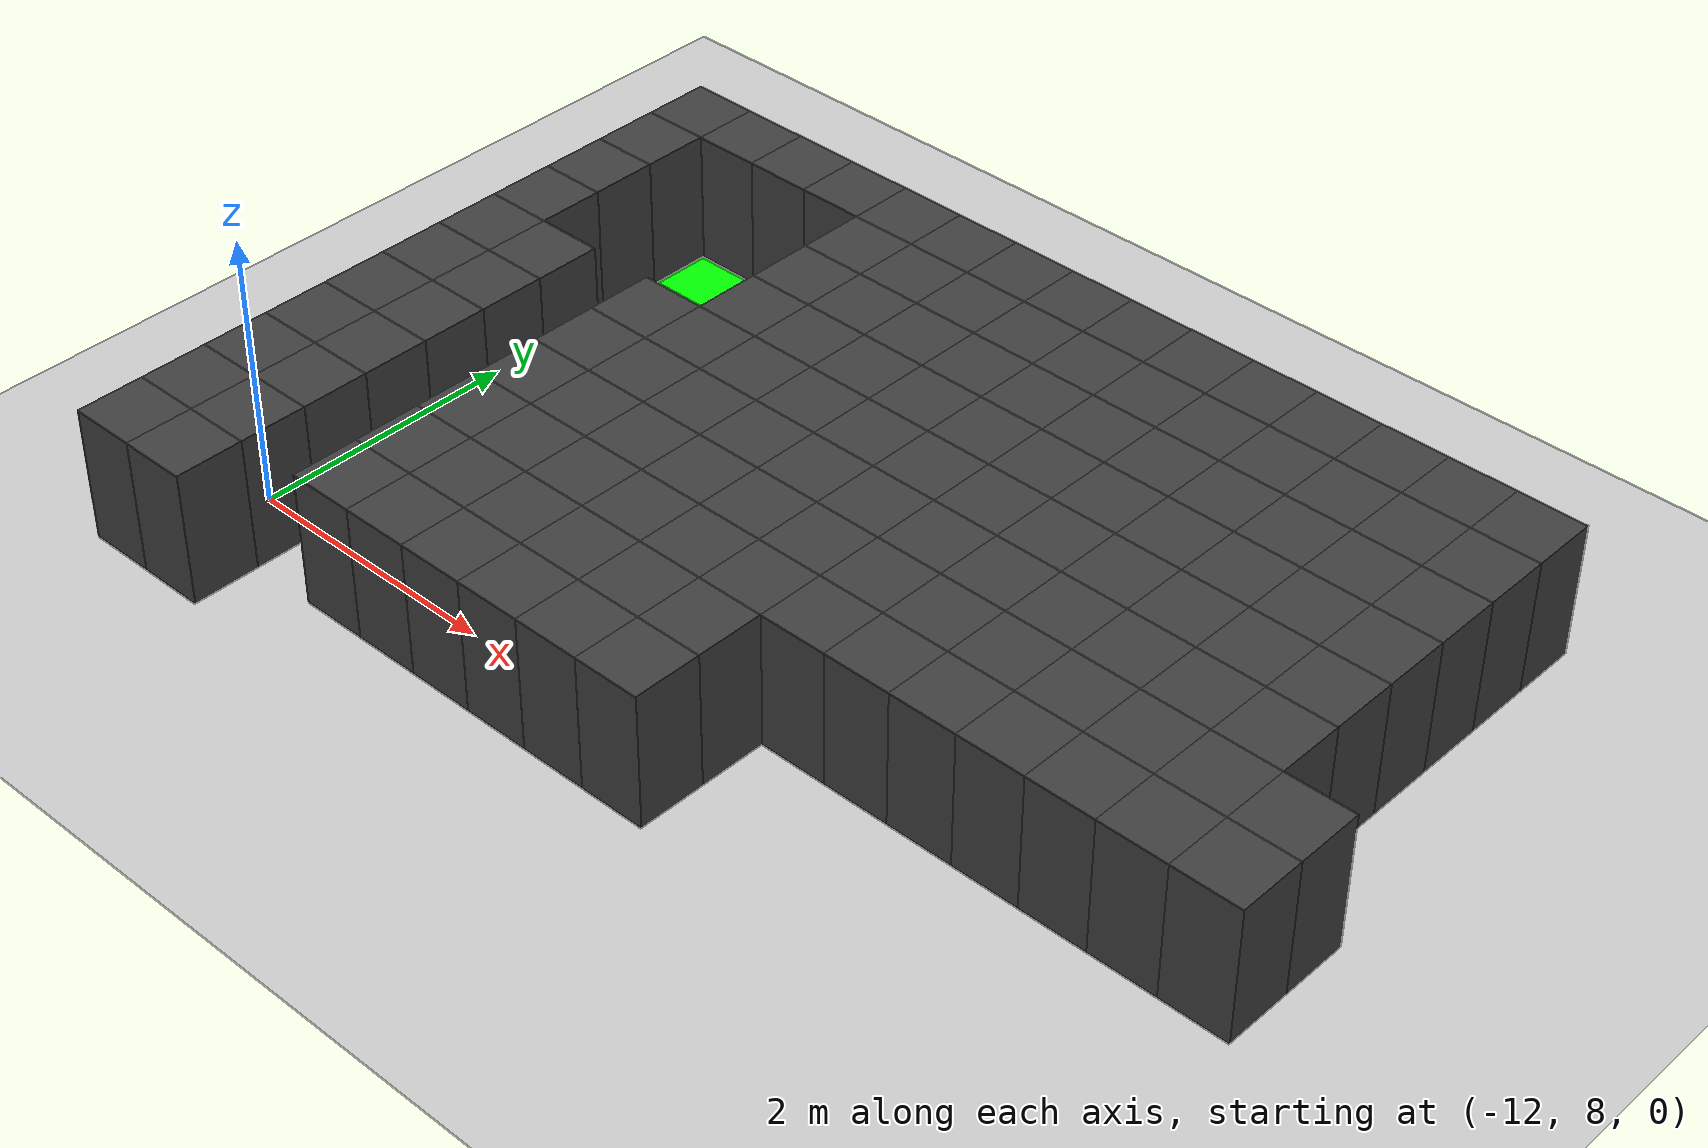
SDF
<sdf version="1.7">
 <world name="map_14980">
  <model name="ground_plane">
   <static>true</static>
   <link name="link">
    <collision name="collision">
     <geometry><plane><normal>0 0 1</normal><size>200 200</size></plane></geometry>
    </collision>
    <visual name="visual">
     <geometry><plane><normal>0 0 1</normal><size>200 200</size></plane></geometry>
     <material><ambient>0.8 0.8 0.8 1</ambient><diffuse>0.8 0.8 0.8 1</diffuse></material>
    </visual>
   </link>
  </model>
  <model name="maze_environment">
   <static>true</static>
   <link name="wall_0">
    <pose>-12.250 12.250 0.500 0 0 0</pose>
    <collision name="col"><geometry><box><size>0.5 0.5 1.0</size></box></geometry></collision>
    <visual name="vis">
     <geometry><box><size>0.5 0.5 1.0</size></box></geometry>
     <material><ambient>0.15 0.15 0.15 1</ambient><diffuse>0.25 0.25 0.25 1</diffuse></material>
    </visual>
   </link>
   <link name="wall_1">
    <pose>-11.750 12.250 0.500 0 0 0</pose>
    <collision name="col"><geometry><box><size>0.5 0.5 1.0</size></box></geometry></collision>
    <visual name="vis">
     <geometry><box><size>0.5 0.5 1.0</size></box></geometry>
     <material><ambient>0.15 0.15 0.15 1</ambient><diffuse>0.25 0.25 0.25 1</diffuse></material>
    </visual>
   </link>
   <link name="wall_2">
    <pose>-11.250 12.250 0.500 0 0 0</pose>
    <collision name="col"><geometry><box><size>0.5 0.5 1.0</size></box></geometry></collision>
    <visual name="vis">
     <geometry><box><size>0.5 0.5 1.0</size></box></geometry>
     <material><ambient>0.15 0.15 0.15 1</ambient><diffuse>0.25 0.25 0.25 1</diffuse></material>
    </visual>
   </link>
   <link name="wall_3">
    <pose>-10.750 12.250 0.500 0 0 0</pose>
    <collision name="col"><geometry><box><size>0.5 0.5 1.0</size></box></geometry></collision>
    <visual name="vis">
     <geometry><box><size>0.5 0.5 1.0</size></box></geometry>
     <material><ambient>0.15 0.15 0.15 1</ambient><diffuse>0.25 0.25 0.25 1</diffuse></material>
    </visual>
   </link>
   <link name="wall_4">
    <pose>-10.250 12.250 0.500 0 0 0</pose>
    <collision name="col"><geometry><box><size>0.5 0.5 1.0</size></box></geometry></collision>
    <visual name="vis">
     <geometry><box><size>0.5 0.5 1.0</size></box></geometry>
     <material><ambient>0.15 0.15 0.15 1</ambient><diffuse>0.25 0.25 0.25 1</diffuse></material>
    </visual>
   </link>
   <link name="wall_5">
    <pose>-9.750 12.250 0.500 0 0 0</pose>
    <collision name="col"><geometry><box><size>0.5 0.5 1.0</size></box></geometry></collision>
    <visual name="vis">
     <geometry><box><size>0.5 0.5 1.0</size></box></geometry>
     <material><ambient>0.15 0.15 0.15 1</ambient><diffuse>0.25 0.25 0.25 1</diffuse></material>
    </visual>
   </link>
   <link name="wall_6">
    <pose>-9.250 12.250 0.500 0 0 0</pose>
    <collision name="col"><geometry><box><size>0.5 0.5 1.0</size></box></geometry></collision>
    <visual name="vis">
     <geometry><box><size>0.5 0.5 1.0</size></box></geometry>
     <material><ambient>0.15 0.15 0.15 1</ambient><diffuse>0.25 0.25 0.25 1</diffuse></material>
    </visual>
   </link>
   <link name="wall_7">
    <pose>-8.750 12.250 0.500 0 0 0</pose>
    <collision name="col"><geometry><box><size>0.5 0.5 1.0</size></box></geometry></collision>
    <visual name="vis">
     <geometry><box><size>0.5 0.5 1.0</size></box></geometry>
     <material><ambient>0.15 0.15 0.15 1</ambient><diffuse>0.25 0.25 0.25 1</diffuse></material>
    </visual>
   </link>
   <link name="wall_8">
    <pose>-8.250 12.250 0.500 0 0 0</pose>
    <collision name="col"><geometry><box><size>0.5 0.5 1.0</size></box></geometry></collision>
    <visual name="vis">
     <geometry><box><size>0.5 0.5 1.0</size></box></geometry>
     <material><ambient>0.15 0.15 0.15 1</ambient><diffuse>0.25 0.25 0.25 1</diffuse></material>
    </visual>
   </link>
   <link name="wall_9">
    <pose>-7.750 12.250 0.500 0 0 0</pose>
    <collision name="col"><geometry><box><size>0.5 0.5 1.0</size></box></geometry></collision>
    <visual name="vis">
     <geometry><box><size>0.5 0.5 1.0</size></box></geometry>
     <material><ambient>0.15 0.15 0.15 1</ambient><diffuse>0.25 0.25 0.25 1</diffuse></material>
    </visual>
   </link>
   <link name="wall_10">
    <pose>-7.250 12.250 0.500 0 0 0</pose>
    <collision name="col"><geometry><box><size>0.5 0.5 1.0</size></box></geometry></collision>
    <visual name="vis">
     <geometry><box><size>0.5 0.5 1.0</size></box></geometry>
     <material><ambient>0.15 0.15 0.15 1</ambient><diffuse>0.25 0.25 0.25 1</diffuse></material>
    </visual>
   </link>
   <link name="wall_11">
    <pose>-6.750 12.250 0.500 0 0 0</pose>
    <collision name="col"><geometry><box><size>0.5 0.5 1.0</size></box></geometry></collision>
    <visual name="vis">
     <geometry><box><size>0.5 0.5 1.0</size></box></geometry>
     <material><ambient>0.15 0.15 0.15 1</ambient><diffuse>0.25 0.25 0.25 1</diffuse></material>
    </visual>
   </link>
   <link name="wall_12">
    <pose>-6.250 12.250 0.500 0 0 0</pose>
    <collision name="col"><geometry><box><size>0.5 0.5 1.0</size></box></geometry></collision>
    <visual name="vis">
     <geometry><box><size>0.5 0.5 1.0</size></box></geometry>
     <material><ambient>0.15 0.15 0.15 1</ambient><diffuse>0.25 0.25 0.25 1</diffuse></material>
    </visual>
   </link>
   <link name="wall_13">
    <pose>-5.750 12.250 0.500 0 0 0</pose>
    <collision name="col"><geometry><box><size>0.5 0.5 1.0</size></box></geometry></collision>
    <visual name="vis">
     <geometry><box><size>0.5 0.5 1.0</size></box></geometry>
     <material><ambient>0.15 0.15 0.15 1</ambient><diffuse>0.25 0.25 0.25 1</diffuse></material>
    </visual>
   </link>
   <link name="wall_14">
    <pose>-5.250 12.250 0.500 0 0 0</pose>
    <collision name="col"><geometry><box><size>0.5 0.5 1.0</size></box></geometry></collision>
    <visual name="vis">
     <geometry><box><size>0.5 0.5 1.0</size></box></geometry>
     <material><ambient>0.15 0.15 0.15 1</ambient><diffuse>0.25 0.25 0.25 1</diffuse></material>
    </visual>
   </link>
   <link name="wall_50">
    <pose>-12.250 11.750 0.500 0 0 0</pose>
    <collision name="col"><geometry><box><size>0.5 0.5 1.0</size></box></geometry></collision>
    <visual name="vis">
     <geometry><box><size>0.5 0.5 1.0</size></box></geometry>
     <material><ambient>0.15 0.15 0.15 1</ambient><diffuse>0.25 0.25 0.25 1</diffuse></material>
    </visual>
   </link>
   <link name="wall_51">
    <pose>-10.250 11.750 0.500 0 0 0</pose>
    <collision name="col"><geometry><box><size>0.5 0.5 1.0</size></box></geometry></collision>
    <visual name="vis">
     <geometry><box><size>0.5 0.5 1.0</size></box></geometry>
     <material><ambient>0.15 0.15 0.15 1</ambient><diffuse>0.25 0.25 0.25 1</diffuse></material>
    </visual>
   </link>
   <link name="wall_52">
    <pose>-9.750 11.750 0.500 0 0 0</pose>
    <collision name="col"><geometry><box><size>0.5 0.5 1.0</size></box></geometry></collision>
    <visual name="vis">
     <geometry><box><size>0.5 0.5 1.0</size></box></geometry>
     <material><ambient>0.15 0.15 0.15 1</ambient><diffuse>0.25 0.25 0.25 1</diffuse></material>
    </visual>
   </link>
   <link name="wall_53">
    <pose>-9.250 11.750 0.500 0 0 0</pose>
    <collision name="col"><geometry><box><size>0.5 0.5 1.0</size></box></geometry></collision>
    <visual name="vis">
     <geometry><box><size>0.5 0.5 1.0</size></box></geometry>
     <material><ambient>0.15 0.15 0.15 1</ambient><diffuse>0.25 0.25 0.25 1</diffuse></material>
    </visual>
   </link>
   <link name="wall_54">
    <pose>-8.750 11.750 0.500 0 0 0</pose>
    <collision name="col"><geometry><box><size>0.5 0.5 1.0</size></box></geometry></collision>
    <visual name="vis">
     <geometry><box><size>0.5 0.5 1.0</size></box></geometry>
     <material><ambient>0.15 0.15 0.15 1</ambient><diffuse>0.25 0.25 0.25 1</diffuse></material>
    </visual>
   </link>
   <link name="wall_55">
    <pose>-8.250 11.750 0.500 0 0 0</pose>
    <collision name="col"><geometry><box><size>0.5 0.5 1.0</size></box></geometry></collision>
    <visual name="vis">
     <geometry><box><size>0.5 0.5 1.0</size></box></geometry>
     <material><ambient>0.15 0.15 0.15 1</ambient><diffuse>0.25 0.25 0.25 1</diffuse></material>
    </visual>
   </link>
   <link name="wall_56">
    <pose>-7.750 11.750 0.500 0 0 0</pose>
    <collision name="col"><geometry><box><size>0.5 0.5 1.0</size></box></geometry></collision>
    <visual name="vis">
     <geometry><box><size>0.5 0.5 1.0</size></box></geometry>
     <material><ambient>0.15 0.15 0.15 1</ambient><diffuse>0.25 0.25 0.25 1</diffuse></material>
    </visual>
   </link>
   <link name="wall_57">
    <pose>-7.250 11.750 0.500 0 0 0</pose>
    <collision name="col"><geometry><box><size>0.5 0.5 1.0</size></box></geometry></collision>
    <visual name="vis">
     <geometry><box><size>0.5 0.5 1.0</size></box></geometry>
     <material><ambient>0.15 0.15 0.15 1</ambient><diffuse>0.25 0.25 0.25 1</diffuse></material>
    </visual>
   </link>
   <link name="wall_58">
    <pose>-6.750 11.750 0.500 0 0 0</pose>
    <collision name="col"><geometry><box><size>0.5 0.5 1.0</size></box></geometry></collision>
    <visual name="vis">
     <geometry><box><size>0.5 0.5 1.0</size></box></geometry>
     <material><ambient>0.15 0.15 0.15 1</ambient><diffuse>0.25 0.25 0.25 1</diffuse></material>
    </visual>
   </link>
   <link name="wall_59">
    <pose>-6.250 11.750 0.500 0 0 0</pose>
    <collision name="col"><geometry><box><size>0.5 0.5 1.0</size></box></geometry></collision>
    <visual name="vis">
     <geometry><box><size>0.5 0.5 1.0</size></box></geometry>
     <material><ambient>0.15 0.15 0.15 1</ambient><diffuse>0.25 0.25 0.25 1</diffuse></material>
    </visual>
   </link>
   <link name="wall_60">
    <pose>-5.750 11.750 0.500 0 0 0</pose>
    <collision name="col"><geometry><box><size>0.5 0.5 1.0</size></box></geometry></collision>
    <visual name="vis">
     <geometry><box><size>0.5 0.5 1.0</size></box></geometry>
     <material><ambient>0.15 0.15 0.15 1</ambient><diffuse>0.25 0.25 0.25 1</diffuse></material>
    </visual>
   </link>
   <link name="wall_61">
    <pose>-5.250 11.750 0.500 0 0 0</pose>
    <collision name="col"><geometry><box><size>0.5 0.5 1.0</size></box></geometry></collision>
    <visual name="vis">
     <geometry><box><size>0.5 0.5 1.0</size></box></geometry>
     <material><ambient>0.15 0.15 0.15 1</ambient><diffuse>0.25 0.25 0.25 1</diffuse></material>
    </visual>
   </link>
   <link name="wall_97">
    <pose>-12.250 11.250 0.500 0 0 0</pose>
    <collision name="col"><geometry><box><size>0.5 0.5 1.0</size></box></geometry></collision>
    <visual name="vis">
     <geometry><box><size>0.5 0.5 1.0</size></box></geometry>
     <material><ambient>0.15 0.15 0.15 1</ambient><diffuse>0.25 0.25 0.25 1</diffuse></material>
    </visual>
   </link>
   <link name="wall_98">
    <pose>-10.250 11.250 0.500 0 0 0</pose>
    <collision name="col"><geometry><box><size>0.5 0.5 1.0</size></box></geometry></collision>
    <visual name="vis">
     <geometry><box><size>0.5 0.5 1.0</size></box></geometry>
     <material><ambient>0.15 0.15 0.15 1</ambient><diffuse>0.25 0.25 0.25 1</diffuse></material>
    </visual>
   </link>
   <link name="wall_99">
    <pose>-9.750 11.250 0.500 0 0 0</pose>
    <collision name="col"><geometry><box><size>0.5 0.5 1.0</size></box></geometry></collision>
    <visual name="vis">
     <geometry><box><size>0.5 0.5 1.0</size></box></geometry>
     <material><ambient>0.15 0.15 0.15 1</ambient><diffuse>0.25 0.25 0.25 1</diffuse></material>
    </visual>
   </link>
   <link name="wall_100">
    <pose>-9.250 11.250 0.500 0 0 0</pose>
    <collision name="col"><geometry><box><size>0.5 0.5 1.0</size></box></geometry></collision>
    <visual name="vis">
     <geometry><box><size>0.5 0.5 1.0</size></box></geometry>
     <material><ambient>0.15 0.15 0.15 1</ambient><diffuse>0.25 0.25 0.25 1</diffuse></material>
    </visual>
   </link>
   <link name="wall_101">
    <pose>-8.750 11.250 0.500 0 0 0</pose>
    <collision name="col"><geometry><box><size>0.5 0.5 1.0</size></box></geometry></collision>
    <visual name="vis">
     <geometry><box><size>0.5 0.5 1.0</size></box></geometry>
     <material><ambient>0.15 0.15 0.15 1</ambient><diffuse>0.25 0.25 0.25 1</diffuse></material>
    </visual>
   </link>
   <link name="wall_102">
    <pose>-8.250 11.250 0.500 0 0 0</pose>
    <collision name="col"><geometry><box><size>0.5 0.5 1.0</size></box></geometry></collision>
    <visual name="vis">
     <geometry><box><size>0.5 0.5 1.0</size></box></geometry>
     <material><ambient>0.15 0.15 0.15 1</ambient><diffuse>0.25 0.25 0.25 1</diffuse></material>
    </visual>
   </link>
   <link name="wall_103">
    <pose>-7.750 11.250 0.500 0 0 0</pose>
    <collision name="col"><geometry><box><size>0.5 0.5 1.0</size></box></geometry></collision>
    <visual name="vis">
     <geometry><box><size>0.5 0.5 1.0</size></box></geometry>
     <material><ambient>0.15 0.15 0.15 1</ambient><diffuse>0.25 0.25 0.25 1</diffuse></material>
    </visual>
   </link>
   <link name="wall_104">
    <pose>-7.250 11.250 0.500 0 0 0</pose>
    <collision name="col"><geometry><box><size>0.5 0.5 1.0</size></box></geometry></collision>
    <visual name="vis">
     <geometry><box><size>0.5 0.5 1.0</size></box></geometry>
     <material><ambient>0.15 0.15 0.15 1</ambient><diffuse>0.25 0.25 0.25 1</diffuse></material>
    </visual>
   </link>
   <link name="wall_105">
    <pose>-6.750 11.250 0.500 0 0 0</pose>
    <collision name="col"><geometry><box><size>0.5 0.5 1.0</size></box></geometry></collision>
    <visual name="vis">
     <geometry><box><size>0.5 0.5 1.0</size></box></geometry>
     <material><ambient>0.15 0.15 0.15 1</ambient><diffuse>0.25 0.25 0.25 1</diffuse></material>
    </visual>
   </link>
   <link name="wall_106">
    <pose>-6.250 11.250 0.500 0 0 0</pose>
    <collision name="col"><geometry><box><size>0.5 0.5 1.0</size></box></geometry></collision>
    <visual name="vis">
     <geometry><box><size>0.5 0.5 1.0</size></box></geometry>
     <material><ambient>0.15 0.15 0.15 1</ambient><diffuse>0.25 0.25 0.25 1</diffuse></material>
    </visual>
   </link>
   <link name="wall_107">
    <pose>-5.750 11.250 0.500 0 0 0</pose>
    <collision name="col"><geometry><box><size>0.5 0.5 1.0</size></box></geometry></collision>
    <visual name="vis">
     <geometry><box><size>0.5 0.5 1.0</size></box></geometry>
     <material><ambient>0.15 0.15 0.15 1</ambient><diffuse>0.25 0.25 0.25 1</diffuse></material>
    </visual>
   </link>
   <link name="wall_108">
    <pose>-5.250 11.250 0.500 0 0 0</pose>
    <collision name="col"><geometry><box><size>0.5 0.5 1.0</size></box></geometry></collision>
    <visual name="vis">
     <geometry><box><size>0.5 0.5 1.0</size></box></geometry>
     <material><ambient>0.15 0.15 0.15 1</ambient><diffuse>0.25 0.25 0.25 1</diffuse></material>
    </visual>
   </link>
   <link name="wall_144">
    <pose>-12.250 10.750 0.500 0 0 0</pose>
    <collision name="col"><geometry><box><size>0.5 0.5 1.0</size></box></geometry></collision>
    <visual name="vis">
     <geometry><box><size>0.5 0.5 1.0</size></box></geometry>
     <material><ambient>0.15 0.15 0.15 1</ambient><diffuse>0.25 0.25 0.25 1</diffuse></material>
    </visual>
   </link>
   <link name="wall_145">
    <pose>-10.250 10.750 0.500 0 0 0</pose>
    <collision name="col"><geometry><box><size>0.5 0.5 1.0</size></box></geometry></collision>
    <visual name="vis">
     <geometry><box><size>0.5 0.5 1.0</size></box></geometry>
     <material><ambient>0.15 0.15 0.15 1</ambient><diffuse>0.25 0.25 0.25 1</diffuse></material>
    </visual>
   </link>
   <link name="wall_146">
    <pose>-9.750 10.750 0.500 0 0 0</pose>
    <collision name="col"><geometry><box><size>0.5 0.5 1.0</size></box></geometry></collision>
    <visual name="vis">
     <geometry><box><size>0.5 0.5 1.0</size></box></geometry>
     <material><ambient>0.15 0.15 0.15 1</ambient><diffuse>0.25 0.25 0.25 1</diffuse></material>
    </visual>
   </link>
   <link name="wall_147">
    <pose>-9.250 10.750 0.500 0 0 0</pose>
    <collision name="col"><geometry><box><size>0.5 0.5 1.0</size></box></geometry></collision>
    <visual name="vis">
     <geometry><box><size>0.5 0.5 1.0</size></box></geometry>
     <material><ambient>0.15 0.15 0.15 1</ambient><diffuse>0.25 0.25 0.25 1</diffuse></material>
    </visual>
   </link>
   <link name="wall_148">
    <pose>-8.750 10.750 0.500 0 0 0</pose>
    <collision name="col"><geometry><box><size>0.5 0.5 1.0</size></box></geometry></collision>
    <visual name="vis">
     <geometry><box><size>0.5 0.5 1.0</size></box></geometry>
     <material><ambient>0.15 0.15 0.15 1</ambient><diffuse>0.25 0.25 0.25 1</diffuse></material>
    </visual>
   </link>
   <link name="wall_149">
    <pose>-8.250 10.750 0.500 0 0 0</pose>
    <collision name="col"><geometry><box><size>0.5 0.5 1.0</size></box></geometry></collision>
    <visual name="vis">
     <geometry><box><size>0.5 0.5 1.0</size></box></geometry>
     <material><ambient>0.15 0.15 0.15 1</ambient><diffuse>0.25 0.25 0.25 1</diffuse></material>
    </visual>
   </link>
   <link name="wall_150">
    <pose>-7.750 10.750 0.500 0 0 0</pose>
    <collision name="col"><geometry><box><size>0.5 0.5 1.0</size></box></geometry></collision>
    <visual name="vis">
     <geometry><box><size>0.5 0.5 1.0</size></box></geometry>
     <material><ambient>0.15 0.15 0.15 1</ambient><diffuse>0.25 0.25 0.25 1</diffuse></material>
    </visual>
   </link>
   <link name="wall_151">
    <pose>-7.250 10.750 0.500 0 0 0</pose>
    <collision name="col"><geometry><box><size>0.5 0.5 1.0</size></box></geometry></collision>
    <visual name="vis">
     <geometry><box><size>0.5 0.5 1.0</size></box></geometry>
     <material><ambient>0.15 0.15 0.15 1</ambient><diffuse>0.25 0.25 0.25 1</diffuse></material>
    </visual>
   </link>
   <link name="wall_152">
    <pose>-6.750 10.750 0.500 0 0 0</pose>
    <collision name="col"><geometry><box><size>0.5 0.5 1.0</size></box></geometry></collision>
    <visual name="vis">
     <geometry><box><size>0.5 0.5 1.0</size></box></geometry>
     <material><ambient>0.15 0.15 0.15 1</ambient><diffuse>0.25 0.25 0.25 1</diffuse></material>
    </visual>
   </link>
   <link name="wall_153">
    <pose>-6.250 10.750 0.500 0 0 0</pose>
    <collision name="col"><geometry><box><size>0.5 0.5 1.0</size></box></geometry></collision>
    <visual name="vis">
     <geometry><box><size>0.5 0.5 1.0</size></box></geometry>
     <material><ambient>0.15 0.15 0.15 1</ambient><diffuse>0.25 0.25 0.25 1</diffuse></material>
    </visual>
   </link>
   <link name="wall_154">
    <pose>-5.750 10.750 0.500 0 0 0</pose>
    <collision name="col"><geometry><box><size>0.5 0.5 1.0</size></box></geometry></collision>
    <visual name="vis">
     <geometry><box><size>0.5 0.5 1.0</size></box></geometry>
     <material><ambient>0.15 0.15 0.15 1</ambient><diffuse>0.25 0.25 0.25 1</diffuse></material>
    </visual>
   </link>
   <link name="wall_155">
    <pose>-5.250 10.750 0.500 0 0 0</pose>
    <collision name="col"><geometry><box><size>0.5 0.5 1.0</size></box></geometry></collision>
    <visual name="vis">
     <geometry><box><size>0.5 0.5 1.0</size></box></geometry>
     <material><ambient>0.15 0.15 0.15 1</ambient><diffuse>0.25 0.25 0.25 1</diffuse></material>
    </visual>
   </link>
   <link name="wall_185">
    <pose>-12.250 10.250 0.500 0 0 0</pose>
    <collision name="col"><geometry><box><size>0.5 0.5 1.0</size></box></geometry></collision>
    <visual name="vis">
     <geometry><box><size>0.5 0.5 1.0</size></box></geometry>
     <material><ambient>0.15 0.15 0.15 1</ambient><diffuse>0.25 0.25 0.25 1</diffuse></material>
    </visual>
   </link>
   <link name="wall_186">
    <pose>-11.750 10.250 0.500 0 0 0</pose>
    <collision name="col"><geometry><box><size>0.5 0.5 1.0</size></box></geometry></collision>
    <visual name="vis">
     <geometry><box><size>0.5 0.5 1.0</size></box></geometry>
     <material><ambient>0.15 0.15 0.15 1</ambient><diffuse>0.25 0.25 0.25 1</diffuse></material>
    </visual>
   </link>
   <link name="wall_187">
    <pose>-10.750 10.250 0.500 0 0 0</pose>
    <collision name="col"><geometry><box><size>0.5 0.5 1.0</size></box></geometry></collision>
    <visual name="vis">
     <geometry><box><size>0.5 0.5 1.0</size></box></geometry>
     <material><ambient>0.15 0.15 0.15 1</ambient><diffuse>0.25 0.25 0.25 1</diffuse></material>
    </visual>
   </link>
   <link name="wall_188">
    <pose>-10.250 10.250 0.500 0 0 0</pose>
    <collision name="col"><geometry><box><size>0.5 0.5 1.0</size></box></geometry></collision>
    <visual name="vis">
     <geometry><box><size>0.5 0.5 1.0</size></box></geometry>
     <material><ambient>0.15 0.15 0.15 1</ambient><diffuse>0.25 0.25 0.25 1</diffuse></material>
    </visual>
   </link>
   <link name="wall_189">
    <pose>-9.750 10.250 0.500 0 0 0</pose>
    <collision name="col"><geometry><box><size>0.5 0.5 1.0</size></box></geometry></collision>
    <visual name="vis">
     <geometry><box><size>0.5 0.5 1.0</size></box></geometry>
     <material><ambient>0.15 0.15 0.15 1</ambient><diffuse>0.25 0.25 0.25 1</diffuse></material>
    </visual>
   </link>
   <link name="wall_190">
    <pose>-9.250 10.250 0.500 0 0 0</pose>
    <collision name="col"><geometry><box><size>0.5 0.5 1.0</size></box></geometry></collision>
    <visual name="vis">
     <geometry><box><size>0.5 0.5 1.0</size></box></geometry>
     <material><ambient>0.15 0.15 0.15 1</ambient><diffuse>0.25 0.25 0.25 1</diffuse></material>
    </visual>
   </link>
   <link name="wall_191">
    <pose>-8.750 10.250 0.500 0 0 0</pose>
    <collision name="col"><geometry><box><size>0.5 0.5 1.0</size></box></geometry></collision>
    <visual name="vis">
     <geometry><box><size>0.5 0.5 1.0</size></box></geometry>
     <material><ambient>0.15 0.15 0.15 1</ambient><diffuse>0.25 0.25 0.25 1</diffuse></material>
    </visual>
   </link>
   <link name="wall_192">
    <pose>-8.250 10.250 0.500 0 0 0</pose>
    <collision name="col"><geometry><box><size>0.5 0.5 1.0</size></box></geometry></collision>
    <visual name="vis">
     <geometry><box><size>0.5 0.5 1.0</size></box></geometry>
     <material><ambient>0.15 0.15 0.15 1</ambient><diffuse>0.25 0.25 0.25 1</diffuse></material>
    </visual>
   </link>
   <link name="wall_193">
    <pose>-7.750 10.250 0.500 0 0 0</pose>
    <collision name="col"><geometry><box><size>0.5 0.5 1.0</size></box></geometry></collision>
    <visual name="vis">
     <geometry><box><size>0.5 0.5 1.0</size></box></geometry>
     <material><ambient>0.15 0.15 0.15 1</ambient><diffuse>0.25 0.25 0.25 1</diffuse></material>
    </visual>
   </link>
   <link name="wall_194">
    <pose>-7.250 10.250 0.500 0 0 0</pose>
    <collision name="col"><geometry><box><size>0.5 0.5 1.0</size></box></geometry></collision>
    <visual name="vis">
     <geometry><box><size>0.5 0.5 1.0</size></box></geometry>
     <material><ambient>0.15 0.15 0.15 1</ambient><diffuse>0.25 0.25 0.25 1</diffuse></material>
    </visual>
   </link>
   <link name="wall_195">
    <pose>-6.750 10.250 0.500 0 0 0</pose>
    <collision name="col"><geometry><box><size>0.5 0.5 1.0</size></box></geometry></collision>
    <visual name="vis">
     <geometry><box><size>0.5 0.5 1.0</size></box></geometry>
     <material><ambient>0.15 0.15 0.15 1</ambient><diffuse>0.25 0.25 0.25 1</diffuse></material>
    </visual>
   </link>
   <link name="wall_196">
    <pose>-6.250 10.250 0.500 0 0 0</pose>
    <collision name="col"><geometry><box><size>0.5 0.5 1.0</size></box></geometry></collision>
    <visual name="vis">
     <geometry><box><size>0.5 0.5 1.0</size></box></geometry>
     <material><ambient>0.15 0.15 0.15 1</ambient><diffuse>0.25 0.25 0.25 1</diffuse></material>
    </visual>
   </link>
   <link name="wall_197">
    <pose>-5.750 10.250 0.500 0 0 0</pose>
    <collision name="col"><geometry><box><size>0.5 0.5 1.0</size></box></geometry></collision>
    <visual name="vis">
     <geometry><box><size>0.5 0.5 1.0</size></box></geometry>
     <material><ambient>0.15 0.15 0.15 1</ambient><diffuse>0.25 0.25 0.25 1</diffuse></material>
    </visual>
   </link>
   <link name="wall_198">
    <pose>-5.250 10.250 0.500 0 0 0</pose>
    <collision name="col"><geometry><box><size>0.5 0.5 1.0</size></box></geometry></collision>
    <visual name="vis">
     <geometry><box><size>0.5 0.5 1.0</size></box></geometry>
     <material><ambient>0.15 0.15 0.15 1</ambient><diffuse>0.25 0.25 0.25 1</diffuse></material>
    </visual>
   </link>
   <link name="wall_228">
    <pose>-12.250 9.750 0.500 0 0 0</pose>
    <collision name="col"><geometry><box><size>0.5 0.5 1.0</size></box></geometry></collision>
    <visual name="vis">
     <geometry><box><size>0.5 0.5 1.0</size></box></geometry>
     <material><ambient>0.15 0.15 0.15 1</ambient><diffuse>0.25 0.25 0.25 1</diffuse></material>
    </visual>
   </link>
   <link name="wall_229">
    <pose>-11.750 9.750 0.500 0 0 0</pose>
    <collision name="col"><geometry><box><size>0.5 0.5 1.0</size></box></geometry></collision>
    <visual name="vis">
     <geometry><box><size>0.5 0.5 1.0</size></box></geometry>
     <material><ambient>0.15 0.15 0.15 1</ambient><diffuse>0.25 0.25 0.25 1</diffuse></material>
    </visual>
   </link>
   <link name="wall_230">
    <pose>-10.750 9.750 0.500 0 0 0</pose>
    <collision name="col"><geometry><box><size>0.5 0.5 1.0</size></box></geometry></collision>
    <visual name="vis">
     <geometry><box><size>0.5 0.5 1.0</size></box></geometry>
     <material><ambient>0.15 0.15 0.15 1</ambient><diffuse>0.25 0.25 0.25 1</diffuse></material>
    </visual>
   </link>
   <link name="wall_231">
    <pose>-10.250 9.750 0.500 0 0 0</pose>
    <collision name="col"><geometry><box><size>0.5 0.5 1.0</size></box></geometry></collision>
    <visual name="vis">
     <geometry><box><size>0.5 0.5 1.0</size></box></geometry>
     <material><ambient>0.15 0.15 0.15 1</ambient><diffuse>0.25 0.25 0.25 1</diffuse></material>
    </visual>
   </link>
   <link name="wall_232">
    <pose>-9.750 9.750 0.500 0 0 0</pose>
    <collision name="col"><geometry><box><size>0.5 0.5 1.0</size></box></geometry></collision>
    <visual name="vis">
     <geometry><box><size>0.5 0.5 1.0</size></box></geometry>
     <material><ambient>0.15 0.15 0.15 1</ambient><diffuse>0.25 0.25 0.25 1</diffuse></material>
    </visual>
   </link>
   <link name="wall_233">
    <pose>-9.250 9.750 0.500 0 0 0</pose>
    <collision name="col"><geometry><box><size>0.5 0.5 1.0</size></box></geometry></collision>
    <visual name="vis">
     <geometry><box><size>0.5 0.5 1.0</size></box></geometry>
     <material><ambient>0.15 0.15 0.15 1</ambient><diffuse>0.25 0.25 0.25 1</diffuse></material>
    </visual>
   </link>
   <link name="wall_234">
    <pose>-8.750 9.750 0.500 0 0 0</pose>
    <collision name="col"><geometry><box><size>0.5 0.5 1.0</size></box></geometry></collision>
    <visual name="vis">
     <geometry><box><size>0.5 0.5 1.0</size></box></geometry>
     <material><ambient>0.15 0.15 0.15 1</ambient><diffuse>0.25 0.25 0.25 1</diffuse></material>
    </visual>
   </link>
   <link name="wall_235">
    <pose>-8.250 9.750 0.500 0 0 0</pose>
    <collision name="col"><geometry><box><size>0.5 0.5 1.0</size></box></geometry></collision>
    <visual name="vis">
     <geometry><box><size>0.5 0.5 1.0</size></box></geometry>
     <material><ambient>0.15 0.15 0.15 1</ambient><diffuse>0.25 0.25 0.25 1</diffuse></material>
    </visual>
   </link>
   <link name="wall_236">
    <pose>-7.750 9.750 0.500 0 0 0</pose>
    <collision name="col"><geometry><box><size>0.5 0.5 1.0</size></box></geometry></collision>
    <visual name="vis">
     <geometry><box><size>0.5 0.5 1.0</size></box></geometry>
     <material><ambient>0.15 0.15 0.15 1</ambient><diffuse>0.25 0.25 0.25 1</diffuse></material>
    </visual>
   </link>
   <link name="wall_237">
    <pose>-7.250 9.750 0.500 0 0 0</pose>
    <collision name="col"><geometry><box><size>0.5 0.5 1.0</size></box></geometry></collision>
    <visual name="vis">
     <geometry><box><size>0.5 0.5 1.0</size></box></geometry>
     <material><ambient>0.15 0.15 0.15 1</ambient><diffuse>0.25 0.25 0.25 1</diffuse></material>
    </visual>
   </link>
   <link name="wall_238">
    <pose>-6.750 9.750 0.500 0 0 0</pose>
    <collision name="col"><geometry><box><size>0.5 0.5 1.0</size></box></geometry></collision>
    <visual name="vis">
     <geometry><box><size>0.5 0.5 1.0</size></box></geometry>
     <material><ambient>0.15 0.15 0.15 1</ambient><diffuse>0.25 0.25 0.25 1</diffuse></material>
    </visual>
   </link>
   <link name="wall_239">
    <pose>-6.250 9.750 0.500 0 0 0</pose>
    <collision name="col"><geometry><box><size>0.5 0.5 1.0</size></box></geometry></collision>
    <visual name="vis">
     <geometry><box><size>0.5 0.5 1.0</size></box></geometry>
     <material><ambient>0.15 0.15 0.15 1</ambient><diffuse>0.25 0.25 0.25 1</diffuse></material>
    </visual>
   </link>
   <link name="wall_240">
    <pose>-5.750 9.750 0.500 0 0 0</pose>
    <collision name="col"><geometry><box><size>0.5 0.5 1.0</size></box></geometry></collision>
    <visual name="vis">
     <geometry><box><size>0.5 0.5 1.0</size></box></geometry>
     <material><ambient>0.15 0.15 0.15 1</ambient><diffuse>0.25 0.25 0.25 1</diffuse></material>
    </visual>
   </link>
   <link name="wall_241">
    <pose>-5.250 9.750 0.500 0 0 0</pose>
    <collision name="col"><geometry><box><size>0.5 0.5 1.0</size></box></geometry></collision>
    <visual name="vis">
     <geometry><box><size>0.5 0.5 1.0</size></box></geometry>
     <material><ambient>0.15 0.15 0.15 1</ambient><diffuse>0.25 0.25 0.25 1</diffuse></material>
    </visual>
   </link>
   <link name="wall_266">
    <pose>-12.250 9.250 0.500 0 0 0</pose>
    <collision name="col"><geometry><box><size>0.5 0.5 1.0</size></box></geometry></collision>
    <visual name="vis">
     <geometry><box><size>0.5 0.5 1.0</size></box></geometry>
     <material><ambient>0.15 0.15 0.15 1</ambient><diffuse>0.25 0.25 0.25 1</diffuse></material>
    </visual>
   </link>
   <link name="wall_267">
    <pose>-11.750 9.250 0.500 0 0 0</pose>
    <collision name="col"><geometry><box><size>0.5 0.5 1.0</size></box></geometry></collision>
    <visual name="vis">
     <geometry><box><size>0.5 0.5 1.0</size></box></geometry>
     <material><ambient>0.15 0.15 0.15 1</ambient><diffuse>0.25 0.25 0.25 1</diffuse></material>
    </visual>
   </link>
   <link name="wall_268">
    <pose>-10.750 9.250 0.500 0 0 0</pose>
    <collision name="col"><geometry><box><size>0.5 0.5 1.0</size></box></geometry></collision>
    <visual name="vis">
     <geometry><box><size>0.5 0.5 1.0</size></box></geometry>
     <material><ambient>0.15 0.15 0.15 1</ambient><diffuse>0.25 0.25 0.25 1</diffuse></material>
    </visual>
   </link>
   <link name="wall_269">
    <pose>-10.250 9.250 0.500 0 0 0</pose>
    <collision name="col"><geometry><box><size>0.5 0.5 1.0</size></box></geometry></collision>
    <visual name="vis">
     <geometry><box><size>0.5 0.5 1.0</size></box></geometry>
     <material><ambient>0.15 0.15 0.15 1</ambient><diffuse>0.25 0.25 0.25 1</diffuse></material>
    </visual>
   </link>
   <link name="wall_270">
    <pose>-9.750 9.250 0.500 0 0 0</pose>
    <collision name="col"><geometry><box><size>0.5 0.5 1.0</size></box></geometry></collision>
    <visual name="vis">
     <geometry><box><size>0.5 0.5 1.0</size></box></geometry>
     <material><ambient>0.15 0.15 0.15 1</ambient><diffuse>0.25 0.25 0.25 1</diffuse></material>
    </visual>
   </link>
   <link name="wall_271">
    <pose>-9.250 9.250 0.500 0 0 0</pose>
    <collision name="col"><geometry><box><size>0.5 0.5 1.0</size></box></geometry></collision>
    <visual name="vis">
     <geometry><box><size>0.5 0.5 1.0</size></box></geometry>
     <material><ambient>0.15 0.15 0.15 1</ambient><diffuse>0.25 0.25 0.25 1</diffuse></material>
    </visual>
   </link>
   <link name="wall_272">
    <pose>-8.750 9.250 0.500 0 0 0</pose>
    <collision name="col"><geometry><box><size>0.5 0.5 1.0</size></box></geometry></collision>
    <visual name="vis">
     <geometry><box><size>0.5 0.5 1.0</size></box></geometry>
     <material><ambient>0.15 0.15 0.15 1</ambient><diffuse>0.25 0.25 0.25 1</diffuse></material>
    </visual>
   </link>
   <link name="wall_273">
    <pose>-8.250 9.250 0.500 0 0 0</pose>
    <collision name="col"><geometry><box><size>0.5 0.5 1.0</size></box></geometry></collision>
    <visual name="vis">
     <geometry><box><size>0.5 0.5 1.0</size></box></geometry>
     <material><ambient>0.15 0.15 0.15 1</ambient><diffuse>0.25 0.25 0.25 1</diffuse></material>
    </visual>
   </link>
   <link name="wall_274">
    <pose>-7.750 9.250 0.500 0 0 0</pose>
    <collision name="col"><geometry><box><size>0.5 0.5 1.0</size></box></geometry></collision>
    <visual name="vis">
     <geometry><box><size>0.5 0.5 1.0</size></box></geometry>
     <material><ambient>0.15 0.15 0.15 1</ambient><diffuse>0.25 0.25 0.25 1</diffuse></material>
    </visual>
   </link>
   <link name="wall_275">
    <pose>-7.250 9.250 0.500 0 0 0</pose>
    <collision name="col"><geometry><box><size>0.5 0.5 1.0</size></box></geometry></collision>
    <visual name="vis">
     <geometry><box><size>0.5 0.5 1.0</size></box></geometry>
     <material><ambient>0.15 0.15 0.15 1</ambient><diffuse>0.25 0.25 0.25 1</diffuse></material>
    </visual>
   </link>
   <link name="wall_276">
    <pose>-6.750 9.250 0.500 0 0 0</pose>
    <collision name="col"><geometry><box><size>0.5 0.5 1.0</size></box></geometry></collision>
    <visual name="vis">
     <geometry><box><size>0.5 0.5 1.0</size></box></geometry>
     <material><ambient>0.15 0.15 0.15 1</ambient><diffuse>0.25 0.25 0.25 1</diffuse></material>
    </visual>
   </link>
   <link name="wall_277">
    <pose>-6.250 9.250 0.500 0 0 0</pose>
    <collision name="col"><geometry><box><size>0.5 0.5 1.0</size></box></geometry></collision>
    <visual name="vis">
     <geometry><box><size>0.5 0.5 1.0</size></box></geometry>
     <material><ambient>0.15 0.15 0.15 1</ambient><diffuse>0.25 0.25 0.25 1</diffuse></material>
    </visual>
   </link>
   <link name="wall_278">
    <pose>-5.750 9.250 0.500 0 0 0</pose>
    <collision name="col"><geometry><box><size>0.5 0.5 1.0</size></box></geometry></collision>
    <visual name="vis">
     <geometry><box><size>0.5 0.5 1.0</size></box></geometry>
     <material><ambient>0.15 0.15 0.15 1</ambient><diffuse>0.25 0.25 0.25 1</diffuse></material>
    </visual>
   </link>
   <link name="wall_279">
    <pose>-5.250 9.250 0.500 0 0 0</pose>
    <collision name="col"><geometry><box><size>0.5 0.5 1.0</size></box></geometry></collision>
    <visual name="vis">
     <geometry><box><size>0.5 0.5 1.0</size></box></geometry>
     <material><ambient>0.15 0.15 0.15 1</ambient><diffuse>0.25 0.25 0.25 1</diffuse></material>
    </visual>
   </link>
   <link name="wall_280">
    <pose>-4.750 9.250 0.500 0 0 0</pose>
    <collision name="col"><geometry><box><size>0.5 0.5 1.0</size></box></geometry></collision>
    <visual name="vis">
     <geometry><box><size>0.5 0.5 1.0</size></box></geometry>
     <material><ambient>0.15 0.15 0.15 1</ambient><diffuse>0.25 0.25 0.25 1</diffuse></material>
    </visual>
   </link>
   <link name="wall_304">
    <pose>-12.250 8.750 0.500 0 0 0</pose>
    <collision name="col"><geometry><box><size>0.5 0.5 1.0</size></box></geometry></collision>
    <visual name="vis">
     <geometry><box><size>0.5 0.5 1.0</size></box></geometry>
     <material><ambient>0.15 0.15 0.15 1</ambient><diffuse>0.25 0.25 0.25 1</diffuse></material>
    </visual>
   </link>
   <link name="wall_305">
    <pose>-11.750 8.750 0.500 0 0 0</pose>
    <collision name="col"><geometry><box><size>0.5 0.5 1.0</size></box></geometry></collision>
    <visual name="vis">
     <geometry><box><size>0.5 0.5 1.0</size></box></geometry>
     <material><ambient>0.15 0.15 0.15 1</ambient><diffuse>0.25 0.25 0.25 1</diffuse></material>
    </visual>
   </link>
   <link name="wall_306">
    <pose>-10.750 8.750 0.500 0 0 0</pose>
    <collision name="col"><geometry><box><size>0.5 0.5 1.0</size></box></geometry></collision>
    <visual name="vis">
     <geometry><box><size>0.5 0.5 1.0</size></box></geometry>
     <material><ambient>0.15 0.15 0.15 1</ambient><diffuse>0.25 0.25 0.25 1</diffuse></material>
    </visual>
   </link>
   <link name="wall_307">
    <pose>-10.250 8.750 0.500 0 0 0</pose>
    <collision name="col"><geometry><box><size>0.5 0.5 1.0</size></box></geometry></collision>
    <visual name="vis">
     <geometry><box><size>0.5 0.5 1.0</size></box></geometry>
     <material><ambient>0.15 0.15 0.15 1</ambient><diffuse>0.25 0.25 0.25 1</diffuse></material>
    </visual>
   </link>
   <link name="wall_308">
    <pose>-9.750 8.750 0.500 0 0 0</pose>
    <collision name="col"><geometry><box><size>0.5 0.5 1.0</size></box></geometry></collision>
    <visual name="vis">
     <geometry><box><size>0.5 0.5 1.0</size></box></geometry>
     <material><ambient>0.15 0.15 0.15 1</ambient><diffuse>0.25 0.25 0.25 1</diffuse></material>
    </visual>
   </link>
   <link name="wall_309">
    <pose>-9.250 8.750 0.500 0 0 0</pose>
    <collision name="col"><geometry><box><size>0.5 0.5 1.0</size></box></geometry></collision>
    <visual name="vis">
     <geometry><box><size>0.5 0.5 1.0</size></box></geometry>
     <material><ambient>0.15 0.15 0.15 1</ambient><diffuse>0.25 0.25 0.25 1</diffuse></material>
    </visual>
   </link>
   <link name="wall_310">
    <pose>-8.750 8.750 0.500 0 0 0</pose>
    <collision name="col"><geometry><box><size>0.5 0.5 1.0</size></box></geometry></collision>
    <visual name="vis">
     <geometry><box><size>0.5 0.5 1.0</size></box></geometry>
     <material><ambient>0.15 0.15 0.15 1</ambient><diffuse>0.25 0.25 0.25 1</diffuse></material>
    </visual>
   </link>
   <link name="wall_311">
    <pose>-8.250 8.750 0.500 0 0 0</pose>
    <collision name="col"><geometry><box><size>0.5 0.5 1.0</size></box></geometry></collision>
    <visual name="vis">
     <geometry><box><size>0.5 0.5 1.0</size></box></geometry>
     <material><ambient>0.15 0.15 0.15 1</ambient><diffuse>0.25 0.25 0.25 1</diffuse></material>
    </visual>
   </link>
   <link name="wall_312">
    <pose>-7.750 8.750 0.500 0 0 0</pose>
    <collision name="col"><geometry><box><size>0.5 0.5 1.0</size></box></geometry></collision>
    <visual name="vis">
     <geometry><box><size>0.5 0.5 1.0</size></box></geometry>
     <material><ambient>0.15 0.15 0.15 1</ambient><diffuse>0.25 0.25 0.25 1</diffuse></material>
    </visual>
   </link>
   <link name="wall_313">
    <pose>-7.250 8.750 0.500 0 0 0</pose>
    <collision name="col"><geometry><box><size>0.5 0.5 1.0</size></box></geometry></collision>
    <visual name="vis">
     <geometry><box><size>0.5 0.5 1.0</size></box></geometry>
     <material><ambient>0.15 0.15 0.15 1</ambient><diffuse>0.25 0.25 0.25 1</diffuse></material>
    </visual>
   </link>
   <link name="wall_314">
    <pose>-6.750 8.750 0.500 0 0 0</pose>
    <collision name="col"><geometry><box><size>0.5 0.5 1.0</size></box></geometry></collision>
    <visual name="vis">
     <geometry><box><size>0.5 0.5 1.0</size></box></geometry>
     <material><ambient>0.15 0.15 0.15 1</ambient><diffuse>0.25 0.25 0.25 1</diffuse></material>
    </visual>
   </link>
   <link name="wall_315">
    <pose>-6.250 8.750 0.500 0 0 0</pose>
    <collision name="col"><geometry><box><size>0.5 0.5 1.0</size></box></geometry></collision>
    <visual name="vis">
     <geometry><box><size>0.5 0.5 1.0</size></box></geometry>
     <material><ambient>0.15 0.15 0.15 1</ambient><diffuse>0.25 0.25 0.25 1</diffuse></material>
    </visual>
   </link>
   <link name="wall_316">
    <pose>-5.750 8.750 0.500 0 0 0</pose>
    <collision name="col"><geometry><box><size>0.5 0.5 1.0</size></box></geometry></collision>
    <visual name="vis">
     <geometry><box><size>0.5 0.5 1.0</size></box></geometry>
     <material><ambient>0.15 0.15 0.15 1</ambient><diffuse>0.25 0.25 0.25 1</diffuse></material>
    </visual>
   </link>
   <link name="wall_317">
    <pose>-5.250 8.750 0.500 0 0 0</pose>
    <collision name="col"><geometry><box><size>0.5 0.5 1.0</size></box></geometry></collision>
    <visual name="vis">
     <geometry><box><size>0.5 0.5 1.0</size></box></geometry>
     <material><ambient>0.15 0.15 0.15 1</ambient><diffuse>0.25 0.25 0.25 1</diffuse></material>
    </visual>
   </link>
   <link name="wall_318">
    <pose>-4.750 8.750 0.500 0 0 0</pose>
    <collision name="col"><geometry><box><size>0.5 0.5 1.0</size></box></geometry></collision>
    <visual name="vis">
     <geometry><box><size>0.5 0.5 1.0</size></box></geometry>
     <material><ambient>0.15 0.15 0.15 1</ambient><diffuse>0.25 0.25 0.25 1</diffuse></material>
    </visual>
   </link>
   <link name="wall_339">
    <pose>-12.250 8.250 0.500 0 0 0</pose>
    <collision name="col"><geometry><box><size>0.5 0.5 1.0</size></box></geometry></collision>
    <visual name="vis">
     <geometry><box><size>0.5 0.5 1.0</size></box></geometry>
     <material><ambient>0.15 0.15 0.15 1</ambient><diffuse>0.25 0.25 0.25 1</diffuse></material>
    </visual>
   </link>
   <link name="wall_340">
    <pose>-11.750 8.250 0.500 0 0 0</pose>
    <collision name="col"><geometry><box><size>0.5 0.5 1.0</size></box></geometry></collision>
    <visual name="vis">
     <geometry><box><size>0.5 0.5 1.0</size></box></geometry>
     <material><ambient>0.15 0.15 0.15 1</ambient><diffuse>0.25 0.25 0.25 1</diffuse></material>
    </visual>
   </link>
   <link name="wall_341">
    <pose>-10.750 8.250 0.500 0 0 0</pose>
    <collision name="col"><geometry><box><size>0.5 0.5 1.0</size></box></geometry></collision>
    <visual name="vis">
     <geometry><box><size>0.5 0.5 1.0</size></box></geometry>
     <material><ambient>0.15 0.15 0.15 1</ambient><diffuse>0.25 0.25 0.25 1</diffuse></material>
    </visual>
   </link>
   <link name="wall_342">
    <pose>-10.250 8.250 0.500 0 0 0</pose>
    <collision name="col"><geometry><box><size>0.5 0.5 1.0</size></box></geometry></collision>
    <visual name="vis">
     <geometry><box><size>0.5 0.5 1.0</size></box></geometry>
     <material><ambient>0.15 0.15 0.15 1</ambient><diffuse>0.25 0.25 0.25 1</diffuse></material>
    </visual>
   </link>
   <link name="wall_343">
    <pose>-9.750 8.250 0.500 0 0 0</pose>
    <collision name="col"><geometry><box><size>0.5 0.5 1.0</size></box></geometry></collision>
    <visual name="vis">
     <geometry><box><size>0.5 0.5 1.0</size></box></geometry>
     <material><ambient>0.15 0.15 0.15 1</ambient><diffuse>0.25 0.25 0.25 1</diffuse></material>
    </visual>
   </link>
   <link name="wall_344">
    <pose>-9.250 8.250 0.500 0 0 0</pose>
    <collision name="col"><geometry><box><size>0.5 0.5 1.0</size></box></geometry></collision>
    <visual name="vis">
     <geometry><box><size>0.5 0.5 1.0</size></box></geometry>
     <material><ambient>0.15 0.15 0.15 1</ambient><diffuse>0.25 0.25 0.25 1</diffuse></material>
    </visual>
   </link>
   <link name="wall_345">
    <pose>-8.750 8.250 0.500 0 0 0</pose>
    <collision name="col"><geometry><box><size>0.5 0.5 1.0</size></box></geometry></collision>
    <visual name="vis">
     <geometry><box><size>0.5 0.5 1.0</size></box></geometry>
     <material><ambient>0.15 0.15 0.15 1</ambient><diffuse>0.25 0.25 0.25 1</diffuse></material>
    </visual>
   </link>
   <link name="wall_346">
    <pose>-8.250 8.250 0.500 0 0 0</pose>
    <collision name="col"><geometry><box><size>0.5 0.5 1.0</size></box></geometry></collision>
    <visual name="vis">
     <geometry><box><size>0.5 0.5 1.0</size></box></geometry>
     <material><ambient>0.15 0.15 0.15 1</ambient><diffuse>0.25 0.25 0.25 1</diffuse></material>
    </visual>
   </link>
   <link name="wall_368">
    <pose>-12.250 7.750 0.500 0 0 0</pose>
    <collision name="col"><geometry><box><size>0.5 0.5 1.0</size></box></geometry></collision>
    <visual name="vis">
     <geometry><box><size>0.5 0.5 1.0</size></box></geometry>
     <material><ambient>0.15 0.15 0.15 1</ambient><diffuse>0.25 0.25 0.25 1</diffuse></material>
    </visual>
   </link>
   <link name="wall_369">
    <pose>-11.750 7.750 0.500 0 0 0</pose>
    <collision name="col"><geometry><box><size>0.5 0.5 1.0</size></box></geometry></collision>
    <visual name="vis">
     <geometry><box><size>0.5 0.5 1.0</size></box></geometry>
     <material><ambient>0.15 0.15 0.15 1</ambient><diffuse>0.25 0.25 0.25 1</diffuse></material>
    </visual>
   </link>
   <link name="wall_370">
    <pose>-10.750 7.750 0.500 0 0 0</pose>
    <collision name="col"><geometry><box><size>0.5 0.5 1.0</size></box></geometry></collision>
    <visual name="vis">
     <geometry><box><size>0.5 0.5 1.0</size></box></geometry>
     <material><ambient>0.15 0.15 0.15 1</ambient><diffuse>0.25 0.25 0.25 1</diffuse></material>
    </visual>
   </link>
   <link name="wall_371">
    <pose>-10.250 7.750 0.500 0 0 0</pose>
    <collision name="col"><geometry><box><size>0.5 0.5 1.0</size></box></geometry></collision>
    <visual name="vis">
     <geometry><box><size>0.5 0.5 1.0</size></box></geometry>
     <material><ambient>0.15 0.15 0.15 1</ambient><diffuse>0.25 0.25 0.25 1</diffuse></material>
    </visual>
   </link>
   <link name="wall_372">
    <pose>-9.750 7.750 0.500 0 0 0</pose>
    <collision name="col"><geometry><box><size>0.5 0.5 1.0</size></box></geometry></collision>
    <visual name="vis">
     <geometry><box><size>0.5 0.5 1.0</size></box></geometry>
     <material><ambient>0.15 0.15 0.15 1</ambient><diffuse>0.25 0.25 0.25 1</diffuse></material>
    </visual>
   </link>
   <link name="wall_373">
    <pose>-9.250 7.750 0.500 0 0 0</pose>
    <collision name="col"><geometry><box><size>0.5 0.5 1.0</size></box></geometry></collision>
    <visual name="vis">
     <geometry><box><size>0.5 0.5 1.0</size></box></geometry>
     <material><ambient>0.15 0.15 0.15 1</ambient><diffuse>0.25 0.25 0.25 1</diffuse></material>
    </visual>
   </link>
   <link name="wall_374">
    <pose>-8.750 7.750 0.500 0 0 0</pose>
    <collision name="col"><geometry><box><size>0.5 0.5 1.0</size></box></geometry></collision>
    <visual name="vis">
     <geometry><box><size>0.5 0.5 1.0</size></box></geometry>
     <material><ambient>0.15 0.15 0.15 1</ambient><diffuse>0.25 0.25 0.25 1</diffuse></material>
    </visual>
   </link>
   <link name="wall_375">
    <pose>-8.250 7.750 0.500 0 0 0</pose>
    <collision name="col"><geometry><box><size>0.5 0.5 1.0</size></box></geometry></collision>
    <visual name="vis">
     <geometry><box><size>0.5 0.5 1.0</size></box></geometry>
     <material><ambient>0.15 0.15 0.15 1</ambient><diffuse>0.25 0.25 0.25 1</diffuse></material>
    </visual>
   </link>
   <link name="wall_397">
    <pose>-12.250 7.250 0.500 0 0 0</pose>
    <collision name="col"><geometry><box><size>0.5 0.5 1.0</size></box></geometry></collision>
    <visual name="vis">
     <geometry><box><size>0.5 0.5 1.0</size></box></geometry>
     <material><ambient>0.15 0.15 0.15 1</ambient><diffuse>0.25 0.25 0.25 1</diffuse></material>
    </visual>
   </link>
   <link name="wall_398">
    <pose>-11.750 7.250 0.500 0 0 0</pose>
    <collision name="col"><geometry><box><size>0.5 0.5 1.0</size></box></geometry></collision>
    <visual name="vis">
     <geometry><box><size>0.5 0.5 1.0</size></box></geometry>
     <material><ambient>0.15 0.15 0.15 1</ambient><diffuse>0.25 0.25 0.25 1</diffuse></material>
    </visual>
   </link>
   <link name="start_zone">
    <pose>-11.750 11.750 0.005 0 0 0</pose>
    <visual name="vis">
     <geometry><box><size>0.45 0.45 0.01</size></box></geometry>
     <material>
      <ambient>0.0 1.0 0.0 1</ambient>
      <diffuse>0.0 1.0 0.0 1</diffuse>
      <emissive>0.00 0.60 0.00 1</emissive>
     </material>
    </visual>
   </link>
  </model>
 </world>
</sdf>
